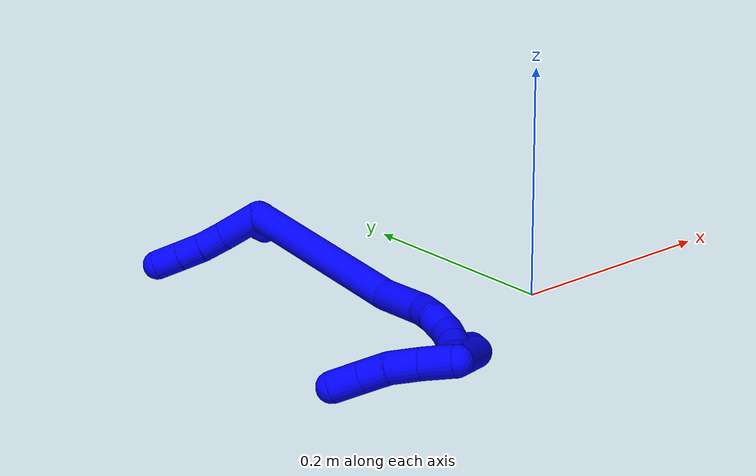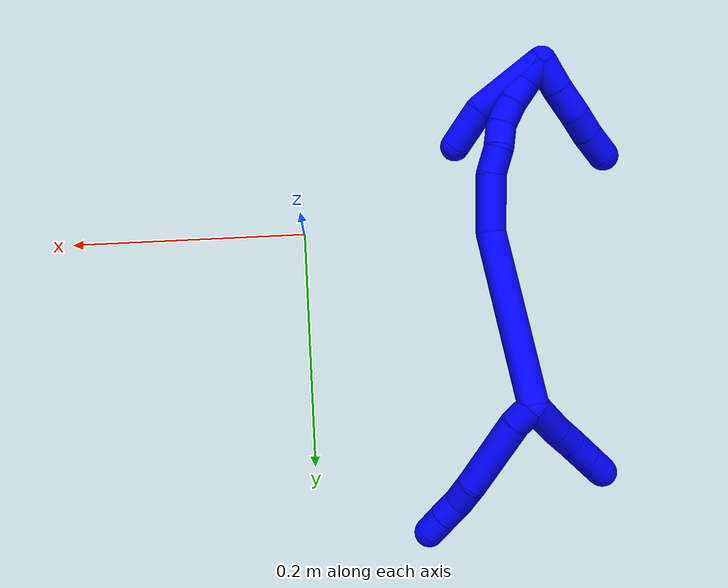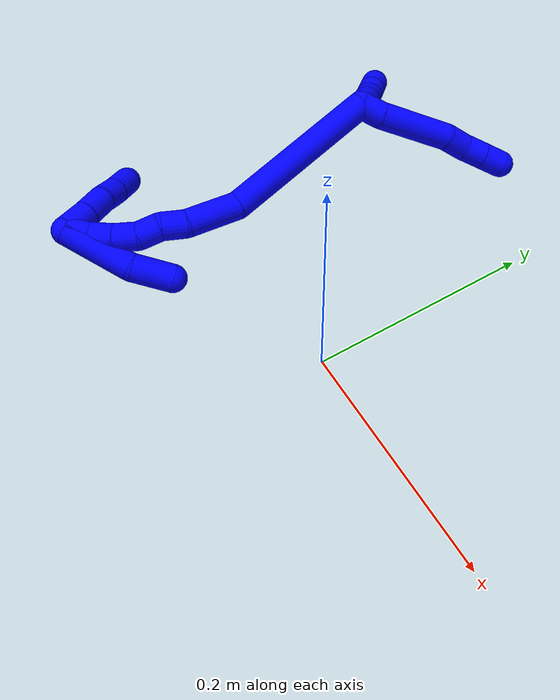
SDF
<sdf version="1.7">
 <world name="default">
  <model name="1">
   <static>0</static>
   <link name="1">
    <collision name="collision-cylinder-e_1_2_8">
     <pose>0.001547 0.010547 0.000785 -1.49654 0.14526 -0.134888</pose>
     <geometry><cylinder><radius>0.0125</radius><length>0.021377</length></cylinder></geometry>
     <surface>
      <friction><ode><mu>1.16</mu><mu2>1.16</mu2><slip1>0</slip1><slip2>0</slip2></ode></friction>
      <contact><ode><kp>1e+06</kp><kd>1</kd><max_vel>0</max_vel><min_depth>0.001</min_depth></ode></contact>
     </surface>
    </collision>
    <visual name="visual-cylinder-e_1_2_8">
     <pose>0.001547 0.010547 0.000785 -1.49654 0.14526 -0.134888</pose>
     <geometry><cylinder><radius>0.0125</radius><length>0.021377</length></cylinder></geometry>
     <material><ambient>0 0 1 1</ambient></material>
    </visual>
    <collision name="collision-cylinder-e_2_8_9">
     <pose>0.006461 0.053044 0.009933 -1.31478 0.101599 -0.078455</pose>
     <geometry><cylinder><radius>0.0125</radius><length>0.066396</length></cylinder></geometry>
     <surface>
      <friction><ode><mu>1.16</mu><mu2>1.16</mu2><slip1>0</slip1><slip2>0</slip2></ode></friction>
      <contact><ode><kp>1e+06</kp><kd>1</kd><max_vel>0</max_vel><min_depth>0.001</min_depth></ode></contact>
     </surface>
    </collision>
    <visual name="visual-cylinder-e_2_8_9">
     <pose>0.006461 0.053044 0.009933 -1.31478 0.101599 -0.078455</pose>
     <geometry><cylinder><radius>0.0125</radius><length>0.066396</length></cylinder></geometry>
     <material><ambient>0 0 1 1</ambient></material>
    </visual>
    <collision name="collision-cylinder-e_3_9_10">
     <pose>0.008531 0.095867 0.019989 -1.41633 -0.117321 0.100497</pose>
     <geometry><cylinder><radius>0.0125</radius><length>0.022161</length></cylinder></geometry>
     <surface>
      <friction><ode><mu>1.16</mu><mu2>1.16</mu2><slip1>0</slip1><slip2>0</slip2></ode></friction>
      <contact><ode><kp>1e+06</kp><kd>1</kd><max_vel>0</max_vel><min_depth>0.001</min_depth></ode></contact>
     </surface>
    </collision>
    <visual name="visual-cylinder-e_3_9_10">
     <pose>0.008531 0.095867 0.019989 -1.41633 -0.117321 0.100497</pose>
     <geometry><cylinder><radius>0.0125</radius><length>0.022161</length></cylinder></geometry>
     <material><ambient>0 0 1 1</ambient></material>
    </visual>
    <collision name="collision-cylinder-e_4_10_11">
     <pose>0.008712 0.116561 0.022868 -1.45067 0.14824 -0.131474</pose>
     <geometry><cylinder><radius>0.0125</radius><length>0.020004</length></cylinder></geometry>
     <surface>
      <friction><ode><mu>1.16</mu><mu2>1.16</mu2><slip1>0</slip1><slip2>0</slip2></ode></friction>
      <contact><ode><kp>1e+06</kp><kd>1</kd><max_vel>0</max_vel><min_depth>0.001</min_depth></ode></contact>
     </surface>
    </collision>
    <visual name="visual-cylinder-e_4_10_11">
     <pose>0.008712 0.116561 0.022868 -1.45067 0.14824 -0.131474</pose>
     <geometry><cylinder><radius>0.0125</radius><length>0.020004</length></cylinder></geometry>
     <material><ambient>0 0 1 1</ambient></material>
    </visual>
    <collision name="collision-cylinder-e_5_11_6">
     <pose>0.011334 0.136266 0.025331 -1.44221 0.114364 -0.100554</pose>
     <geometry><cylinder><radius>0.0125</radius><length>0.020063</length></cylinder></geometry>
     <surface>
      <friction><ode><mu>1.16</mu><mu2>1.16</mu2><slip1>0</slip1><slip2>0</slip2></ode></friction>
      <contact><ode><kp>1e+06</kp><kd>1</kd><max_vel>0</max_vel><min_depth>0.001</min_depth></ode></contact>
     </surface>
    </collision>
    <visual name="visual-cylinder-e_5_11_6">
     <pose>0.011334 0.136266 0.025331 -1.44221 0.114364 -0.100554</pose>
     <geometry><cylinder><radius>0.0125</radius><length>0.020063</length></cylinder></geometry>
     <material><ambient>0 0 1 1</ambient></material>
    </visual>
    <collision name="collision-cylinder-e_1_2_12">
     <pose>-0.012986 0.005407 0.010797 -0.464279 -0.821711 0.205252</pose>
     <geometry><cylinder><radius>0.0125</radius><length>0.035466</length></cylinder></geometry>
     <surface>
      <friction><ode><mu>1.16</mu><mu2>1.16</mu2><slip1>0</slip1><slip2>0</slip2></ode></friction>
      <contact><ode><kp>1e+06</kp><kd>1</kd><max_vel>0</max_vel><min_depth>0.001</min_depth></ode></contact>
     </surface>
    </collision>
    <visual name="visual-cylinder-e_1_2_12">
     <pose>-0.012986 0.005407 0.010797 -0.464279 -0.821711 0.205252</pose>
     <geometry><cylinder><radius>0.0125</radius><length>0.035466</length></cylinder></geometry>
     <material><ambient>0 0 1 1</ambient></material>
    </visual>
    <collision name="collision-cylinder-e_2_12_13">
     <pose>-0.034023 0.013208 0.028408 -0.337798 -0.839676 0.151943</pose>
     <geometry><cylinder><radius>0.0125</radius><length>0.021629</length></cylinder></geometry>
     <surface>
      <friction><ode><mu>1.16</mu><mu2>1.16</mu2><slip1>0</slip1><slip2>0</slip2></ode></friction>
      <contact><ode><kp>1e+06</kp><kd>1</kd><max_vel>0</max_vel><min_depth>0.001</min_depth></ode></contact>
     </surface>
    </collision>
    <visual name="visual-cylinder-e_2_12_13">
     <pose>-0.034023 0.013208 0.028408 -0.337798 -0.839676 0.151943</pose>
     <geometry><cylinder><radius>0.0125</radius><length>0.021629</length></cylinder></geometry>
     <material><ambient>0 0 1 1</ambient></material>
    </visual>
    <collision name="collision-cylinder-e_3_13_14">
     <pose>-0.049011 0.01761 0.042577 -0.266716 -0.73816 0.10369</pose>
     <geometry><cylinder><radius>0.0125</radius><length>0.020618</length></cylinder></geometry>
     <surface>
      <friction><ode><mu>1.16</mu><mu2>1.16</mu2><slip1>0</slip1><slip2>0</slip2></ode></friction>
      <contact><ode><kp>1e+06</kp><kd>1</kd><max_vel>0</max_vel><min_depth>0.001</min_depth></ode></contact>
     </surface>
    </collision>
    <visual name="visual-cylinder-e_3_13_14">
     <pose>-0.049011 0.01761 0.042577 -0.266716 -0.73816 0.10369</pose>
     <geometry><cylinder><radius>0.0125</radius><length>0.020618</length></cylinder></geometry>
     <material><ambient>0 0 1 1</ambient></material>
    </visual>
    <collision name="collision-cylinder-e_4_14_5">
     <pose>-0.063406 0.02178 0.057926 -0.263881 -0.733169 0.101818</pose>
     <geometry><cylinder><radius>0.0125</radius><length>0.022287</length></cylinder></geometry>
     <surface>
      <friction><ode><mu>1.16</mu><mu2>1.16</mu2><slip1>0</slip1><slip2>0</slip2></ode></friction>
      <contact><ode><kp>1e+06</kp><kd>1</kd><max_vel>0</max_vel><min_depth>0.001</min_depth></ode></contact>
     </surface>
    </collision>
    <visual name="visual-cylinder-e_4_14_5">
     <pose>-0.063406 0.02178 0.057926 -0.263881 -0.733169 0.101818</pose>
     <geometry><cylinder><radius>0.0125</radius><length>0.022287</length></cylinder></geometry>
     <material><ambient>0 0 1 1</ambient></material>
    </visual>
    <collision name="collision-cylinder-e_1_2_15">
     <pose>-0.012008 -0.025924 -0.067508 2.77495 -0.164554 -0.836999</pose>
     <geometry><cylinder><radius>0.0125</radius><length>0.14661</length></cylinder></geometry>
     <surface>
      <friction><ode><mu>1.16</mu><mu2>1.16</mu2><slip1>0</slip1><slip2>0</slip2></ode></friction>
      <contact><ode><kp>1e+06</kp><kd>1</kd><max_vel>0</max_vel><min_depth>0.001</min_depth></ode></contact>
     </surface>
    </collision>
    <visual name="visual-cylinder-e_1_2_15">
     <pose>-0.012008 -0.025924 -0.067508 2.77495 -0.164554 -0.836999</pose>
     <geometry><cylinder><radius>0.0125</radius><length>0.14661</length></cylinder></geometry>
     <material><ambient>0 0 1 1</ambient></material>
    </visual>
    <collision name="collision-cylinder-e_2_15_16">
     <pose>-0.025453 -0.067499 -0.15359 2.44137 -0.05906 -0.161434</pose>
     <geometry><cylinder><radius>0.0125</radius><length>0.048662</length></cylinder></geometry>
     <surface>
      <friction><ode><mu>1.16</mu><mu2>1.16</mu2><slip1>0</slip1><slip2>0</slip2></ode></friction>
      <contact><ode><kp>1e+06</kp><kd>1</kd><max_vel>0</max_vel><min_depth>0.001</min_depth></ode></contact>
     </surface>
    </collision>
    <visual name="visual-cylinder-e_2_15_16">
     <pose>-0.025453 -0.067499 -0.15359 2.44137 -0.05906 -0.161434</pose>
     <geometry><cylinder><radius>0.0125</radius><length>0.048662</length></cylinder></geometry>
     <material><ambient>0 0 1 1</ambient></material>
    </visual>
    <collision name="collision-cylinder-e_3_16_17">
     <pose>-0.029116 -0.091914 -0.178459 2.19373 -0.20354 -0.393059</pose>
     <geometry><cylinder><radius>0.0125</radius><length>0.022034</length></cylinder></geometry>
     <surface>
      <friction><ode><mu>1.16</mu><mu2>1.16</mu2><slip1>0</slip1><slip2>0</slip2></ode></friction>
      <contact><ode><kp>1e+06</kp><kd>1</kd><max_vel>0</max_vel><min_depth>0.001</min_depth></ode></contact>
     </surface>
    </collision>
    <visual name="visual-cylinder-e_3_16_17">
     <pose>-0.029116 -0.091914 -0.178459 2.19373 -0.20354 -0.393059</pose>
     <geometry><cylinder><radius>0.0125</radius><length>0.022034</length></cylinder></geometry>
     <material><ambient>0 0 1 1</ambient></material>
    </visual>
    <collision name="collision-cylinder-e_4_17_18">
     <pose>-0.034888 -0.106316 -0.192334 2.50195 -0.358988 -1.0024</pose>
     <geometry><cylinder><radius>0.0125</radius><length>0.020182</length></cylinder></geometry>
     <surface>
      <friction><ode><mu>1.16</mu><mu2>1.16</mu2><slip1>0</slip1><slip2>0</slip2></ode></friction>
      <contact><ode><kp>1e+06</kp><kd>1</kd><max_vel>0</max_vel><min_depth>0.001</min_depth></ode></contact>
     </surface>
    </collision>
    <visual name="visual-cylinder-e_4_17_18">
     <pose>-0.034888 -0.106316 -0.192334 2.50195 -0.358988 -1.0024</pose>
     <geometry><cylinder><radius>0.0125</radius><length>0.020182</length></cylinder></geometry>
     <material><ambient>0 0 1 1</ambient></material>
    </visual>
    <collision name="collision-cylinder-e_5_18_19">
     <pose>-0.042573 -0.120028 -0.204996 2.13265 -0.409461 -0.719427</pose>
     <geometry><cylinder><radius>0.0125</radius><length>0.020798</length></cylinder></geometry>
     <surface>
      <friction><ode><mu>1.16</mu><mu2>1.16</mu2><slip1>0</slip1><slip2>0</slip2></ode></friction>
      <contact><ode><kp>1e+06</kp><kd>1</kd><max_vel>0</max_vel><min_depth>0.001</min_depth></ode></contact>
     </surface>
    </collision>
    <visual name="visual-cylinder-e_5_18_19">
     <pose>-0.042573 -0.120028 -0.204996 2.13265 -0.409461 -0.719427</pose>
     <geometry><cylinder><radius>0.0125</radius><length>0.020798</length></cylinder></geometry>
     <material><ambient>0 0 1 1</ambient></material>
    </visual>
    <collision name="collision-cylinder-e_6_19_20">
     <pose>-0.051655 -0.136768 -0.213831 1.97942 -0.482092 -0.716352</pose>
     <geometry><cylinder><radius>0.0125</radius><length>0.02132</length></cylinder></geometry>
     <surface>
      <friction><ode><mu>1.16</mu><mu2>1.16</mu2><slip1>0</slip1><slip2>0</slip2></ode></friction>
      <contact><ode><kp>1e+06</kp><kd>1</kd><max_vel>0</max_vel><min_depth>0.001</min_depth></ode></contact>
     </surface>
    </collision>
    <visual name="visual-cylinder-e_6_19_20">
     <pose>-0.051655 -0.136768 -0.213831 1.97942 -0.482092 -0.716352</pose>
     <geometry><cylinder><radius>0.0125</radius><length>0.02132</length></cylinder></geometry>
     <material><ambient>0 0 1 1</ambient></material>
    </visual>
    <collision name="collision-cylinder-e_7_20_1">
     <pose>-0.059343 -0.154958 -0.219985 1.81788 -0.272601 -0.348511</pose>
     <geometry><cylinder><radius>0.0125</radius><length>0.020394</length></cylinder></geometry>
     <surface>
      <friction><ode><mu>1.16</mu><mu2>1.16</mu2><slip1>0</slip1><slip2>0</slip2></ode></friction>
      <contact><ode><kp>1e+06</kp><kd>1</kd><max_vel>0</max_vel><min_depth>0.001</min_depth></ode></contact>
     </surface>
    </collision>
    <visual name="visual-cylinder-e_7_20_1">
     <pose>-0.059343 -0.154958 -0.219985 1.81788 -0.272601 -0.348511</pose>
     <geometry><cylinder><radius>0.0125</radius><length>0.020394</length></cylinder></geometry>
     <material><ambient>0 0 1 1</ambient></material>
    </visual>
    <collision name="collision-cylinder-e_1_1_21">
     <pose>-0.067777 -0.160272 -0.210864 -0.350133 -0.434167 0.077984</pose>
     <geometry><cylinder><radius>0.0125</radius><length>0.027044</length></cylinder></geometry>
     <surface>
      <friction><ode><mu>1.16</mu><mu2>1.16</mu2><slip1>0</slip1><slip2>0</slip2></ode></friction>
      <contact><ode><kp>1e+06</kp><kd>1</kd><max_vel>0</max_vel><min_depth>0.001</min_depth></ode></contact>
     </surface>
    </collision>
    <visual name="visual-cylinder-e_1_1_21">
     <pose>-0.067777 -0.160272 -0.210864 -0.350133 -0.434167 0.077984</pose>
     <geometry><cylinder><radius>0.0125</radius><length>0.027044</length></cylinder></geometry>
     <material><ambient>0 0 1 1</ambient></material>
    </visual>
    <collision name="collision-cylinder-e_2_21_22">
     <pose>-0.079647 -0.152789 -0.188425 -0.291475 -0.497053 0.074462</pose>
     <geometry><cylinder><radius>0.0125</radius><length>0.025932</length></cylinder></geometry>
     <surface>
      <friction><ode><mu>1.16</mu><mu2>1.16</mu2><slip1>0</slip1><slip2>0</slip2></ode></friction>
      <contact><ode><kp>1e+06</kp><kd>1</kd><max_vel>0</max_vel><min_depth>0.001</min_depth></ode></contact>
     </surface>
    </collision>
    <visual name="visual-cylinder-e_2_21_22">
     <pose>-0.079647 -0.152789 -0.188425 -0.291475 -0.497053 0.074462</pose>
     <geometry><cylinder><radius>0.0125</radius><length>0.025932</length></cylinder></geometry>
     <material><ambient>0 0 1 1</ambient></material>
    </visual>
    <collision name="collision-cylinder-e_3_22_23">
     <pose>-0.09234 -0.145996 -0.169663 -0.421574 -0.64806 0.143482</pose>
     <geometry><cylinder><radius>0.0125</radius><length>0.021569</length></cylinder></geometry>
     <surface>
      <friction><ode><mu>1.16</mu><mu2>1.16</mu2><slip1>0</slip1><slip2>0</slip2></ode></friction>
      <contact><ode><kp>1e+06</kp><kd>1</kd><max_vel>0</max_vel><min_depth>0.001</min_depth></ode></contact>
     </surface>
    </collision>
    <visual name="visual-cylinder-e_3_22_23">
     <pose>-0.09234 -0.145996 -0.169663 -0.421574 -0.64806 0.143482</pose>
     <geometry><cylinder><radius>0.0125</radius><length>0.021569</length></cylinder></geometry>
     <material><ambient>0 0 1 1</ambient></material>
    </visual>
    <collision name="collision-cylinder-e_4_23_4">
     <pose>-0.106879 -0.139242 -0.152488 -0.333778 -0.682655 0.119539</pose>
     <geometry><cylinder><radius>0.0125</radius><length>0.025455</length></cylinder></geometry>
     <surface>
      <friction><ode><mu>1.16</mu><mu2>1.16</mu2><slip1>0</slip1><slip2>0</slip2></ode></friction>
      <contact><ode><kp>1e+06</kp><kd>1</kd><max_vel>0</max_vel><min_depth>0.001</min_depth></ode></contact>
     </surface>
    </collision>
    <visual name="visual-cylinder-e_4_23_4">
     <pose>-0.106879 -0.139242 -0.152488 -0.333778 -0.682655 0.119539</pose>
     <geometry><cylinder><radius>0.0125</radius><length>0.025455</length></cylinder></geometry>
     <material><ambient>0 0 1 1</ambient></material>
    </visual>
    <collision name="collision-cylinder-e_1_1_24">
     <pose>-0.052356 -0.13441 -0.224008 -1.62464 0.312595 -0.329595</pose>
     <geometry><cylinder><radius>0.0125</radius><length>0.063295</length></cylinder></geometry>
     <surface>
      <friction><ode><mu>1.16</mu><mu2>1.16</mu2><slip1>0</slip1><slip2>0</slip2></ode></friction>
      <contact><ode><kp>1e+06</kp><kd>1</kd><max_vel>0</max_vel><min_depth>0.001</min_depth></ode></contact>
     </surface>
    </collision>
    <visual name="visual-cylinder-e_1_1_24">
     <pose>-0.052356 -0.13441 -0.224008 -1.62464 0.312595 -0.329595</pose>
     <geometry><cylinder><radius>0.0125</radius><length>0.063295</length></cylinder></geometry>
     <material><ambient>0 0 1 1</ambient></material>
    </visual>
    <collision name="collision-cylinder-e_2_24_3">
     <pose>-0.039586 -0.086741 -0.221402 -1.33505 0.16629 -0.13119</pose>
     <geometry><cylinder><radius>0.0125</radius><length>0.036705</length></cylinder></geometry>
     <surface>
      <friction><ode><mu>1.16</mu><mu2>1.16</mu2><slip1>0</slip1><slip2>0</slip2></ode></friction>
      <contact><ode><kp>1e+06</kp><kd>1</kd><max_vel>0</max_vel><min_depth>0.001</min_depth></ode></contact>
     </surface>
    </collision>
    <visual name="visual-cylinder-e_2_24_3">
     <pose>-0.039586 -0.086741 -0.221402 -1.33505 0.16629 -0.13119</pose>
     <geometry><cylinder><radius>0.0125</radius><length>0.036705</length></cylinder></geometry>
     <material><ambient>0 0 1 1</ambient></material>
    </visual>
    <collision name="collision-sphere-3">
     <pose>-0.036548 -0.069142 -0.217174 0 -0 0</pose>
     <geometry><sphere><radius>0.0125</radius></sphere></geometry>
     <surface>
      <friction><ode><mu>1.16</mu><mu2>1.16</mu2><slip1>0</slip1><slip2>0</slip2></ode></friction>
      <contact><ode><kp>1e+06</kp><kd>1</kd><max_vel>0</max_vel><min_depth>0.001</min_depth></ode></contact>
     </surface>
    </collision>
    <visual name="visual-sphere-3">
     <pose>-0.036548 -0.069142 -0.217174 0 -0 0</pose>
     <geometry><sphere><radius>0.0125</radius></sphere></geometry>
     <material><ambient>0 0 1 1</ambient></material>
    </visual>
    <collision name="collision-sphere-24">
     <pose>-0.042623 -0.10434 -0.225629 0 -0 0</pose>
     <geometry><sphere><radius>0.0125</radius></sphere></geometry>
     <surface>
      <friction><ode><mu>1.16</mu><mu2>1.16</mu2><slip1>0</slip1><slip2>0</slip2></ode></friction>
      <contact><ode><kp>1e+06</kp><kd>1</kd><max_vel>0</max_vel><min_depth>0.001</min_depth></ode></contact>
     </surface>
    </collision>
    <visual name="visual-sphere-24">
     <pose>-0.042623 -0.10434 -0.225629 0 -0 0</pose>
     <geometry><sphere><radius>0.0125</radius></sphere></geometry>
     <material><ambient>0 0 1 1</ambient></material>
    </visual>
    <collision name="collision-sphere-4">
     <pose>-0.114908 -0.136007 -0.143157 0 -0 0</pose>
     <geometry><sphere><radius>0.0125</radius></sphere></geometry>
     <surface>
      <friction><ode><mu>1.16</mu><mu2>1.16</mu2><slip1>0</slip1><slip2>0</slip2></ode></friction>
      <contact><ode><kp>1e+06</kp><kd>1</kd><max_vel>0</max_vel><min_depth>0.001</min_depth></ode></contact>
     </surface>
    </collision>
    <visual name="visual-sphere-4">
     <pose>-0.114908 -0.136007 -0.143157 0 -0 0</pose>
     <geometry><sphere><radius>0.0125</radius></sphere></geometry>
     <material><ambient>0 0 1 1</ambient></material>
    </visual>
    <collision name="collision-sphere-23">
     <pose>-0.09885 -0.142477 -0.161818 0 -0 0</pose>
     <geometry><sphere><radius>0.0125</radius></sphere></geometry>
     <surface>
      <friction><ode><mu>1.16</mu><mu2>1.16</mu2><slip1>0</slip1><slip2>0</slip2></ode></friction>
      <contact><ode><kp>1e+06</kp><kd>1</kd><max_vel>0</max_vel><min_depth>0.001</min_depth></ode></contact>
     </surface>
    </collision>
    <visual name="visual-sphere-23">
     <pose>-0.09885 -0.142477 -0.161818 0 -0 0</pose>
     <geometry><sphere><radius>0.0125</radius></sphere></geometry>
     <material><ambient>0 0 1 1</ambient></material>
    </visual>
    <collision name="collision-sphere-22">
     <pose>-0.08583 -0.149514 -0.177508 0 -0 0</pose>
     <geometry><sphere><radius>0.0125</radius></sphere></geometry>
     <surface>
      <friction><ode><mu>1.16</mu><mu2>1.16</mu2><slip1>0</slip1><slip2>0</slip2></ode></friction>
      <contact><ode><kp>1e+06</kp><kd>1</kd><max_vel>0</max_vel><min_depth>0.001</min_depth></ode></contact>
     </surface>
    </collision>
    <visual name="visual-sphere-22">
     <pose>-0.08583 -0.149514 -0.177508 0 -0 0</pose>
     <geometry><sphere><radius>0.0125</radius></sphere></geometry>
     <material><ambient>0 0 1 1</ambient></material>
    </visual>
    <collision name="collision-sphere-21">
     <pose>-0.073465 -0.156064 -0.199341 0 -0 0</pose>
     <geometry><sphere><radius>0.0125</radius></sphere></geometry>
     <surface>
      <friction><ode><mu>1.16</mu><mu2>1.16</mu2><slip1>0</slip1><slip2>0</slip2></ode></friction>
      <contact><ode><kp>1e+06</kp><kd>1</kd><max_vel>0</max_vel><min_depth>0.001</min_depth></ode></contact>
     </surface>
    </collision>
    <visual name="visual-sphere-21">
     <pose>-0.073465 -0.156064 -0.199341 0 -0 0</pose>
     <geometry><sphere><radius>0.0125</radius></sphere></geometry>
     <material><ambient>0 0 1 1</ambient></material>
    </visual>
    <collision name="collision-sphere-1">
     <pose>-0.062088 -0.16448 -0.222387 0 -0 0</pose>
     <geometry><sphere><radius>0.0125</radius></sphere></geometry>
     <surface>
      <friction><ode><mu>1.16</mu><mu2>1.16</mu2><slip1>0</slip1><slip2>0</slip2></ode></friction>
      <contact><ode><kp>1e+06</kp><kd>1</kd><max_vel>0</max_vel><min_depth>0.001</min_depth></ode></contact>
     </surface>
    </collision>
    <visual name="visual-sphere-1">
     <pose>-0.062088 -0.16448 -0.222387 0 -0 0</pose>
     <geometry><sphere><radius>0.0125</radius></sphere></geometry>
     <material><ambient>0 0 1 1</ambient></material>
    </visual>
    <collision name="collision-sphere-6">
     <pose>0.012479 0.146149 0.026609 0 -0 0</pose>
     <geometry><sphere><radius>0.0125</radius></sphere></geometry>
     <surface>
      <friction><ode><mu>1.16</mu><mu2>1.16</mu2><slip1>0</slip1><slip2>0</slip2></ode></friction>
      <contact><ode><kp>1e+06</kp><kd>1</kd><max_vel>0</max_vel><min_depth>0.001</min_depth></ode></contact>
     </surface>
    </collision>
    <visual name="visual-sphere-6">
     <pose>0.012479 0.146149 0.026609 0 -0 0</pose>
     <geometry><sphere><radius>0.0125</radius></sphere></geometry>
     <material><ambient>0 0 1 1</ambient></material>
    </visual>
    <collision name="collision-sphere-11">
     <pose>0.010189 0.126382 0.024053 0 -0 0</pose>
     <geometry><sphere><radius>0.0125</radius></sphere></geometry>
     <surface>
      <friction><ode><mu>1.16</mu><mu2>1.16</mu2><slip1>0</slip1><slip2>0</slip2></ode></friction>
      <contact><ode><kp>1e+06</kp><kd>1</kd><max_vel>0</max_vel><min_depth>0.001</min_depth></ode></contact>
     </surface>
    </collision>
    <visual name="visual-sphere-11">
     <pose>0.010189 0.126382 0.024053 0 -0 0</pose>
     <geometry><sphere><radius>0.0125</radius></sphere></geometry>
     <material><ambient>0 0 1 1</ambient></material>
    </visual>
    <collision name="collision-sphere-10">
     <pose>0.007235 0.10674 0.021682 0 -0 0</pose>
     <geometry><sphere><radius>0.0125</radius></sphere></geometry>
     <surface>
      <friction><ode><mu>1.16</mu><mu2>1.16</mu2><slip1>0</slip1><slip2>0</slip2></ode></friction>
      <contact><ode><kp>1e+06</kp><kd>1</kd><max_vel>0</max_vel><min_depth>0.001</min_depth></ode></contact>
     </surface>
    </collision>
    <visual name="visual-sphere-10">
     <pose>0.007235 0.10674 0.021682 0 -0 0</pose>
     <geometry><sphere><radius>0.0125</radius></sphere></geometry>
     <material><ambient>0 0 1 1</ambient></material>
    </visual>
    <collision name="collision-sphere-9">
     <pose>0.009828 0.084994 0.018296 0 -0 0</pose>
     <geometry><sphere><radius>0.0125</radius></sphere></geometry>
     <surface>
      <friction><ode><mu>1.16</mu><mu2>1.16</mu2><slip1>0</slip1><slip2>0</slip2></ode></friction>
      <contact><ode><kp>1e+06</kp><kd>1</kd><max_vel>0</max_vel><min_depth>0.001</min_depth></ode></contact>
     </surface>
    </collision>
    <visual name="visual-sphere-9">
     <pose>0.009828 0.084994 0.018296 0 -0 0</pose>
     <geometry><sphere><radius>0.0125</radius></sphere></geometry>
     <material><ambient>0 0 1 1</ambient></material>
    </visual>
    <collision name="collision-sphere-2">
     <geometry><sphere><radius>0.0125</radius></sphere></geometry>
     <surface>
      <friction><ode><mu>1.16</mu><mu2>1.16</mu2><slip1>0</slip1><slip2>0</slip2></ode></friction>
      <contact><ode><kp>1e+06</kp><kd>1</kd><max_vel>0</max_vel><min_depth>0.001</min_depth></ode></contact>
     </surface>
    </collision>
    <visual name="visual-sphere-2">
     <geometry><sphere><radius>0.0125</radius></sphere></geometry>
     <material><ambient>0 0 1 1</ambient></material>
    </visual>
    <collision name="collision-sphere-19">
     <pose>-0.046713 -0.128101 -0.210078 0 -0 0</pose>
     <geometry><sphere><radius>0.0125</radius></sphere></geometry>
     <surface>
      <friction><ode><mu>1.16</mu><mu2>1.16</mu2><slip1>0</slip1><slip2>0</slip2></ode></friction>
      <contact><ode><kp>1e+06</kp><kd>1</kd><max_vel>0</max_vel><min_depth>0.001</min_depth></ode></contact>
     </surface>
    </collision>
    <visual name="visual-sphere-19">
     <pose>-0.046713 -0.128101 -0.210078 0 -0 0</pose>
     <geometry><sphere><radius>0.0125</radius></sphere></geometry>
     <material><ambient>0 0 1 1</ambient></material>
    </visual>
    <collision name="collision-sphere-8">
     <pose>0.003094 0.021093 0.001569 0 -0 0</pose>
     <geometry><sphere><radius>0.0125</radius></sphere></geometry>
     <surface>
      <friction><ode><mu>1.16</mu><mu2>1.16</mu2><slip1>0</slip1><slip2>0</slip2></ode></friction>
      <contact><ode><kp>1e+06</kp><kd>1</kd><max_vel>0</max_vel><min_depth>0.001</min_depth></ode></contact>
     </surface>
    </collision>
    <visual name="visual-sphere-8">
     <pose>0.003094 0.021093 0.001569 0 -0 0</pose>
     <geometry><sphere><radius>0.0125</radius></sphere></geometry>
     <material><ambient>0 0 1 1</ambient></material>
    </visual>
    <collision name="collision-sphere-12">
     <pose>-0.025972 0.010814 0.021595 0 -0 0</pose>
     <geometry><sphere><radius>0.0125</radius></sphere></geometry>
     <surface>
      <friction><ode><mu>1.16</mu><mu2>1.16</mu2><slip1>0</slip1><slip2>0</slip2></ode></friction>
      <contact><ode><kp>1e+06</kp><kd>1</kd><max_vel>0</max_vel><min_depth>0.001</min_depth></ode></contact>
     </surface>
    </collision>
    <visual name="visual-sphere-12">
     <pose>-0.025972 0.010814 0.021595 0 -0 0</pose>
     <geometry><sphere><radius>0.0125</radius></sphere></geometry>
     <material><ambient>0 0 1 1</ambient></material>
    </visual>
    <collision name="collision-sphere-13">
     <pose>-0.042074 0.015601 0.035221 0 -0 0</pose>
     <geometry><sphere><radius>0.0125</radius></sphere></geometry>
     <surface>
      <friction><ode><mu>1.16</mu><mu2>1.16</mu2><slip1>0</slip1><slip2>0</slip2></ode></friction>
      <contact><ode><kp>1e+06</kp><kd>1</kd><max_vel>0</max_vel><min_depth>0.001</min_depth></ode></contact>
     </surface>
    </collision>
    <visual name="visual-sphere-13">
     <pose>-0.042074 0.015601 0.035221 0 -0 0</pose>
     <geometry><sphere><radius>0.0125</radius></sphere></geometry>
     <material><ambient>0 0 1 1</ambient></material>
    </visual>
    <collision name="collision-sphere-14">
     <pose>-0.055948 0.01962 0.049933 0 -0 0</pose>
     <geometry><sphere><radius>0.0125</radius></sphere></geometry>
     <surface>
      <friction><ode><mu>1.16</mu><mu2>1.16</mu2><slip1>0</slip1><slip2>0</slip2></ode></friction>
      <contact><ode><kp>1e+06</kp><kd>1</kd><max_vel>0</max_vel><min_depth>0.001</min_depth></ode></contact>
     </surface>
    </collision>
    <visual name="visual-sphere-14">
     <pose>-0.055948 0.01962 0.049933 0 -0 0</pose>
     <geometry><sphere><radius>0.0125</radius></sphere></geometry>
     <material><ambient>0 0 1 1</ambient></material>
    </visual>
    <collision name="collision-sphere-5">
     <pose>-0.070863 0.02394 0.06592 0 -0 0</pose>
     <geometry><sphere><radius>0.0125</radius></sphere></geometry>
     <surface>
      <friction><ode><mu>1.16</mu><mu2>1.16</mu2><slip1>0</slip1><slip2>0</slip2></ode></friction>
      <contact><ode><kp>1e+06</kp><kd>1</kd><max_vel>0</max_vel><min_depth>0.001</min_depth></ode></contact>
     </surface>
    </collision>
    <visual name="visual-sphere-5">
     <pose>-0.070863 0.02394 0.06592 0 -0 0</pose>
     <geometry><sphere><radius>0.0125</radius></sphere></geometry>
     <material><ambient>0 0 1 1</ambient></material>
    </visual>
    <collision name="collision-sphere-15">
     <pose>-0.024017 -0.051848 -0.135017 0 -0 0</pose>
     <geometry><sphere><radius>0.0125</radius></sphere></geometry>
     <surface>
      <friction><ode><mu>1.16</mu><mu2>1.16</mu2><slip1>0</slip1><slip2>0</slip2></ode></friction>
      <contact><ode><kp>1e+06</kp><kd>1</kd><max_vel>0</max_vel><min_depth>0.001</min_depth></ode></contact>
     </surface>
    </collision>
    <visual name="visual-sphere-15">
     <pose>-0.024017 -0.051848 -0.135017 0 -0 0</pose>
     <geometry><sphere><radius>0.0125</radius></sphere></geometry>
     <material><ambient>0 0 1 1</ambient></material>
    </visual>
    <collision name="collision-sphere-16">
     <pose>-0.026889 -0.083151 -0.172164 0 -0 0</pose>
     <geometry><sphere><radius>0.0125</radius></sphere></geometry>
     <surface>
      <friction><ode><mu>1.16</mu><mu2>1.16</mu2><slip1>0</slip1><slip2>0</slip2></ode></friction>
      <contact><ode><kp>1e+06</kp><kd>1</kd><max_vel>0</max_vel><min_depth>0.001</min_depth></ode></contact>
     </surface>
    </collision>
    <visual name="visual-sphere-16">
     <pose>-0.026889 -0.083151 -0.172164 0 -0 0</pose>
     <geometry><sphere><radius>0.0125</radius></sphere></geometry>
     <material><ambient>0 0 1 1</ambient></material>
    </visual>
    <collision name="collision-sphere-17">
     <pose>-0.031343 -0.100677 -0.184754 0 -0 0</pose>
     <geometry><sphere><radius>0.0125</radius></sphere></geometry>
     <surface>
      <friction><ode><mu>1.16</mu><mu2>1.16</mu2><slip1>0</slip1><slip2>0</slip2></ode></friction>
      <contact><ode><kp>1e+06</kp><kd>1</kd><max_vel>0</max_vel><min_depth>0.001</min_depth></ode></contact>
     </surface>
    </collision>
    <visual name="visual-sphere-17">
     <pose>-0.031343 -0.100677 -0.184754 0 -0 0</pose>
     <geometry><sphere><radius>0.0125</radius></sphere></geometry>
     <material><ambient>0 0 1 1</ambient></material>
    </visual>
    <collision name="collision-sphere-18">
     <pose>-0.038433 -0.111956 -0.199914 0 -0 0</pose>
     <geometry><sphere><radius>0.0125</radius></sphere></geometry>
     <surface>
      <friction><ode><mu>1.16</mu><mu2>1.16</mu2><slip1>0</slip1><slip2>0</slip2></ode></friction>
      <contact><ode><kp>1e+06</kp><kd>1</kd><max_vel>0</max_vel><min_depth>0.001</min_depth></ode></contact>
     </surface>
    </collision>
    <visual name="visual-sphere-18">
     <pose>-0.038433 -0.111956 -0.199914 0 -0 0</pose>
     <geometry><sphere><radius>0.0125</radius></sphere></geometry>
     <material><ambient>0 0 1 1</ambient></material>
    </visual>
    <collision name="collision-sphere-20">
     <pose>-0.056598 -0.145436 -0.217584 0 -0 0</pose>
     <geometry><sphere><radius>0.0125</radius></sphere></geometry>
     <surface>
      <friction><ode><mu>1.16</mu><mu2>1.16</mu2><slip1>0</slip1><slip2>0</slip2></ode></friction>
      <contact><ode><kp>1e+06</kp><kd>1</kd><max_vel>0</max_vel><min_depth>0.001</min_depth></ode></contact>
     </surface>
    </collision>
    <visual name="visual-sphere-20">
     <pose>-0.056598 -0.145436 -0.217584 0 -0 0</pose>
     <geometry><sphere><radius>0.0125</radius></sphere></geometry>
     <material><ambient>0 0 1 1</ambient></material>
    </visual>
    <inertial>
     <pose>-0.031315 -0.045662 -0.098237 0 -0 0</pose>
     <mass>0.75</mass>
     <inertia>
      <ixx>4.6e-05</ixx>
      <ixy>0</ixy>
      <ixz>0</ixz>
      <iyy>-0.000339</iyy>
      <iyz>0</iyz>
      <izz>8.8e-05</izz>
     </inertia>
    </inertial>
   </link>
   <pose>-0.17551 0.149783 0.072812 -1.0318 -0.882935 0.122292</pose>
  </model>
 </world>
</sdf>
